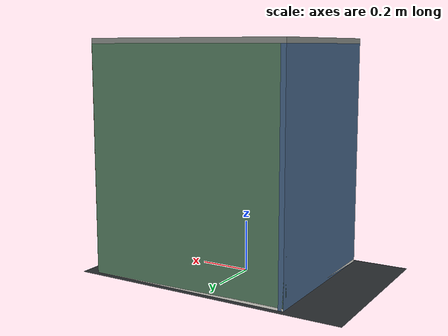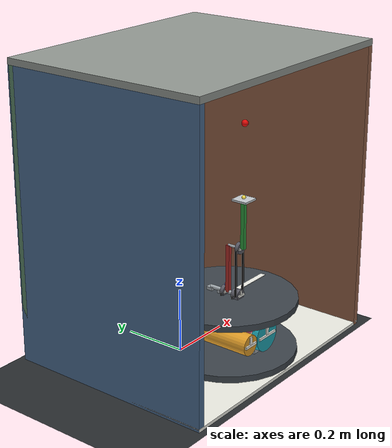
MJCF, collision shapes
<mujoco model="simple_motor_gear">
  <compiler angle="degree" autolimits="true"/>
  <option timestep="0.002" gravity="0 0 0"/>

  <default>
    <geom contype="0" conaffinity="0"/>
  </default>

  <visual>
    <global azimuth="135" elevation="-20"/>
    <headlight ambient="0.22 0.22 0.22" diffuse="0.50 0.50 0.48" specular="0.14 0.14 0.14"/>
  </visual>

  <asset>
    <texture name="grid" type="2d" builtin="checker" width="512" height="512"
             rgb1="0.20 0.22 0.23" rgb2="0.12 0.13 0.14"/>
    <texture name="left_wall_checker" type="2d" file="assets/left_wall_checker.png"/>
    <texture name="right_wall_checker" type="2d" file="assets/right_wall_checker.png"/>
    <texture name="back_wall_checker" type="2d" file="assets/back_wall_checker.png"/>
    <texture name="ceiling_checker" type="2d" file="assets/ceiling_checker.png"/>
    <mesh name="left_wall_surface" file="assets/left_wall_surface.obj" inertia="shell"/>
    <mesh name="right_wall_surface" file="assets/right_wall_surface.obj" inertia="shell"/>
    <mesh name="back_wall_surface" file="assets/back_wall_surface.obj" inertia="shell"/>
    <mesh name="ceiling_surface" file="assets/ceiling_surface.obj" inertia="shell"/>
    <material name="floor" texture="grid" texrepeat="6 4"/>
    <material name="base" rgba="0.94 0.94 0.90 1"/>
    <material name="motor" rgba="0.27 0.45 0.60 1"/>
    <material name="shaft" rgba="0.65 0.68 0.70 1"/>
    <material name="gear" rgba="0.90 0.63 0.16 1"/>
    <material name="gear2" rgba="0.22 0.62 0.42 1"/>
    <material name="gear3" rgba="0.25 0.48 0.80 1"/>
    <material name="gear4" rgba="0.58 0.35 0.78 1"/>
    <material name="gear5" rgba="0.86 0.34 0.50 1"/>
    <material name="gear6" rgba="0.12 0.66 0.72 1"/>
    <material name="spool" rgba="0.88 0.46 0.14 1"/>
    <material name="turntable" rgba="0.24 0.27 0.30 1"/>
    <material name="timing" rgba="0.36 0.36 0.40 1"/>
    <material name="belt" rgba="0.04 0.04 0.04 1"/>
    <material name="arm" rgba="0.70 0.18 0.16 1"/>
    <material name="arm2" rgba="0.18 0.62 0.24 1"/>
    <material name="plate" rgba="0.78 0.80 0.82 1"/>
    <material name="spotlight" rgba="1.00 0.90 0.32 1"/>
    <material name="target_red" rgba="0.90 0.04 0.03 1"/>
    <material name="axis_x" rgba="0.90 0.10 0.10 1"/>
    <material name="axis_y" rgba="0.10 0.75 0.20 1"/>
    <material name="axis_z" rgba="0.12 0.35 0.95 1"/>
    <material name="mark" rgba="0.95 0.95 0.92 1"/>
    <material name="left_wall" rgba="0.30 0.43 0.58 1"/>
    <material name="right_wall" rgba="0.58 0.38 0.28 1"/>
    <material name="back_wall" rgba="0.36 0.53 0.41 1"/>
    <material name="ceiling" rgba="0.58 0.60 0.58 1"/>
    <material name="left_wall_surface" texture="left_wall_checker"/>
    <material name="right_wall_surface" texture="right_wall_checker"/>
    <material name="back_wall_surface" texture="back_wall_checker"/>
    <material name="ceiling_surface" texture="ceiling_checker"/>
  </asset>

  <worldbody>
    <light name="key" pos="0.2 -0.5 0.5" dir="-0.2 0.5 -0.7"
           ambient="0.10 0.10 0.10" diffuse="0.70 0.70 0.66" specular="0.15 0.15 0.15"/>
    <light name="fill" pos="-0.35 -0.35 0.35" dir="0.6 0.5 -0.5"
           diffuse="0.35 0.39 0.43" specular="0.08 0.08 0.08"/>
    <light name="front_soft" pos="0 -0.45 0.16" dir="0 1 -0.1"
           diffuse="0.18 0.18 0.16" specular="0.03 0.03 0.03"/>
    <camera name="view" pos="0.080 -1.20 0.430" xyaxes="1 0 0 0 0 1"/>

    <geom name="floor" type="plane" size="0.55 0.35 0.01" material="floor"/>
    <!-- 0.78 m clear width leaves about one original-base width beside the mechanism. -->
    <geom name="base" type="box" pos="0.080 0 0.005" size="0.410 0.330 0.005" material="base"/>
    <geom name="left_wall" type="box" pos="-0.320 0 0.450" size="0.010 0.330 0.450" material="left_wall"/>
    <geom name="right_wall" type="box" pos="0.480 0 0.450" size="0.010 0.330 0.450" material="right_wall"/>
    <geom name="back_wall" type="box" pos="0.080 0.320 0.450" size="0.410 0.010 0.450" material="back_wall"/>
    <geom name="ceiling" type="box" pos="0.080 0 0.910" size="0.410 0.330 0.010" material="ceiling"/>
    <geom name="left_wall_checker_surface" type="mesh" mesh="left_wall_surface"
          pos="-0.3095 -0.010 0.450" material="left_wall_surface"/>
    <geom name="right_wall_checker_surface" type="mesh" mesh="right_wall_surface"
          pos="0.4695 -0.010 0.450" material="right_wall_surface"/>
    <geom name="back_wall_checker_surface" type="mesh" mesh="back_wall_surface"
          pos="0.080 0.3095 0.450" material="back_wall_surface"/>
    <geom name="ceiling_checker_surface" type="mesh" mesh="ceiling_surface"
          pos="0.080 -0.010 0.8995" material="ceiling_surface"/>

    <!-- Room-fixed target coordinates. This frame's origin is the initial
         Arm 1 pivot; its axes remain parallel to the global room axes. -->
    <body name="target_origin_frame" pos="0.082 -0.106 0.180">
      <geom name="target_axis_x" type="capsule" fromto="0 0 0 0.040 0 0"
            size="0.0015" material="axis_x"/>
      <geom name="target_axis_y" type="capsule" fromto="0 0 0 0 0.040 0"
            size="0.0015" material="axis_y"/>
      <geom name="target_axis_z" type="capsule" fromto="0 0 0 0 0 0.040"
            size="0.0015" material="axis_z"/>
      <site name="TARGET_ORIGIN_0_0_0" pos="0 0 0" size="0.002"
            rgba="1 1 1 1"/>
      <body name="camera_target" pos="0 -0.064 0.550">
        <geom name="camera_target_sphere" type="sphere" size="0.010"
              material="target_red"/>
      </body>
    </body>

    <!-- The 20 mm turntable raises and yaws the complete mechanism above the fixed room base. -->
    <body name="turntable" pos="0 0 0.020">
      <joint name="turntable_yaw" type="hinge" pos="0.082 -0.118 0" axis="0 0 1"/>
      <geom name="turntable_disk" type="cylinder" pos="0.082 -0.118 0" size="0.210 0.010" material="turntable"/>
      <geom name="turntable_mark" type="box" pos="0.1975 -0.118 0.011" size="0.0672 0.008 0.001" material="mark"/>

    <site name="M" pos="-0.070 -0.010 0.125" size="0.001" rgba="1 1 1 0"/>
    <site name="G1" pos="0.070 -0.105 0.125" size="0.001" rgba="1 1 1 0"/>
    <site name="G2" pos="0.170 -0.105 0.125" size="0.001" rgba="1 1 1 0"/>
    <site name="TG1" pos="0.120 -0.106 0.110" size="0.001" rgba="1 1 1 0"/>
    <site name="TG2" pos="0.120 -0.106 0.210" size="0.001" rgba="1 1 1 0"/>
    <site name="G3" pos="0.170 -0.145 0.125" size="0.001" rgba="1 1 1 0"/>
    <site name="G4" pos="0.170 -0.185 0.125" size="0.001" rgba="1 1 1 0"/>
    <site name="G5" pos="0.170 -0.225 0.125" size="0.001" rgba="1 1 1 0"/>
    <site name="G6" pos="0.170 -0.265 0.125" size="0.001" rgba="1 1 1 0"/>
    <site name="TG3" pos="0.120 -0.146 0.110" size="0.001" rgba="1 1 1 0"/>
    <site name="TG4" pos="0.120 -0.146 0.210" size="0.001" rgba="1 1 1 0"/>
    <site name="TG5" pos="0.120 -0.158 0.210" size="0.001" rgba="1 1 1 0"/>
    <site name="TG6" pos="0.120 -0.158 0.360" size="0.001" rgba="1 1 1 0"/>

    <body name="M" pos="0 -0.035 0.080">
      <geom name="motor_case" type="box" pos="0 0.025 0" size="0.050 0.035 0.070" material="motor"/>
      <geom name="shaft" type="cylinder" pos="0 -0.020 0" euler="90 0 0" size="0.008 0.030" material="shaft"/>

      <!-- Duplicate lazy-Susan plate. Its bottom touches the motor-case top,
           and its center/radius track the lower turntable to constrain the
           arm mechanism between the two plates. -->
      <geom name="upper_turntable_disk" type="cylinder"
            pos="0.082 -0.083 0.080" size="0.210 0.010" material="turntable"/>
      <geom name="upper_turntable_mark" type="box"
            pos="0.1975 -0.083 0.091" size="0.0672 0.008 0.001" material="mark"/>

      <body name="G1" pos="0 -0.055 0">
        <joint name="gear_hinge" type="hinge" axis="0 1 0"/>
        <geom name="gear_disk" type="cylinder" pos="0 -0.080 0" euler="90 0 0" size="0.032 0.090" material="gear"/>
        <geom name="face_mark" type="box" pos="0 -0.171 0.0128" size="0.006 0.002 0.0141" material="mark"/>
        <geom name="spoke_mark" type="box" pos="0 -0.172 0" size="0.0256 0.002 0.004" material="mark"/>
      </body>
    </body>

    <geom name="g2_support" type="box" pos="0.082 -0.055 0.045" size="0.010 0.010 0.035" material="shaft"/>
    <geom name="g2_axle" type="cylinder" pos="0.082 -0.0775 0.080" euler="90 0 0" size="0.006 0.0225" material="shaft"/>
    <geom name="tg2_support" type="box" pos="0.082 -0.055 0.130" size="0.010 0.010 0.050" material="shaft"/>
    <geom name="tg2_axle" type="cylinder" pos="0.082 -0.0805 0.180" euler="90 0 0" size="0.006 0.0255" material="shaft"/>
    <geom name="belt_left" type="box" pos="0.0645 -0.106 0.130" size="0.002 0.003 0.050" material="belt"/>
    <geom name="belt_right" type="box" pos="0.0995 -0.106 0.130" size="0.002 0.003 0.050" material="belt"/>
    <geom name="g3_support" type="box" pos="0.082 -0.095 0.045" size="0.010 0.010 0.035" material="shaft"/>
    <geom name="g3_axle" type="cylinder" pos="0.082 -0.1175 0.080" euler="90 0 0" size="0.006 0.0225" material="shaft"/>
    <geom name="g4_support" type="box" pos="0.082 -0.135 0.045" size="0.010 0.010 0.035" material="shaft"/>
    <geom name="g4_axle" type="cylinder" pos="0.082 -0.1575 0.080" euler="90 0 0" size="0.006 0.0225" material="shaft"/>
    <geom name="g5_support" type="box" pos="0.082 -0.175 0.045" size="0.010 0.010 0.035" material="shaft"/>
    <geom name="g5_axle" type="cylinder" pos="0.082 -0.1975 0.080" euler="90 0 0" size="0.006 0.0225" material="shaft"/>
    <geom name="g6_support" type="box" pos="0.082 -0.215 0.045" size="0.010 0.010 0.035" material="shaft"/>
    <geom name="g6_axle" type="cylinder" pos="0.082 -0.2375 0.080" euler="90 0 0" size="0.006 0.0225" material="shaft"/>
    <geom name="tg4_support" type="box" pos="0.082 -0.095 0.130" size="0.010 0.010 0.050" material="shaft"/>
    <geom name="tg4_axle" type="cylinder" pos="0.082 -0.1205 0.180" euler="90 0 0" size="0.006 0.0255" material="shaft"/>
    <geom name="belt2_left" type="box" pos="0.0645 -0.146 0.130" size="0.002 0.003 0.050" material="belt"/>
    <geom name="belt2_right" type="box" pos="0.0995 -0.146 0.130" size="0.002 0.003 0.050" material="belt"/>
    <body name="G2" pos="0.082 -0.090 0.080">
      <joint name="g2_hinge" type="hinge" axis="0 1 0"/>
      <geom name="g2_disk" type="cylinder" euler="90 0 0" size="0.050 0.010" material="gear2"/>
      <geom name="g2_face_mark" type="box" pos="0 -0.011 0.020" size="0.006 0.002 0.022" material="mark"/>
      <geom name="g2_spoke_mark" type="box" pos="0 -0.012 0" size="0.040 0.002 0.004" material="mark"/>
      <geom name="tg1_disk" type="cylinder" pos="0 -0.016 0" euler="90 0 0" size="0.0175 0.006" material="timing"/>
      <geom name="tg1_face_mark" type="box" pos="0 -0.022 0.007" size="0.004 0.0015 0.0077" material="mark"/>
      <geom name="tg1_spoke_mark" type="box" pos="0 -0.023 0" size="0.014 0.0015 0.003" material="mark"/>
    </body>

    <body name="TG2" pos="0.082 -0.106 0.180">
      <joint name="tg2_hinge" type="hinge" axis="0 1 0"/>
      <geom name="tg2_disk" type="cylinder" euler="90 0 0" size="0.0175 0.006" material="timing"/>
      <geom name="tg2_face_mark" type="box" pos="0 -0.007 0.007" size="0.004 0.0015 0.0077" material="mark"/>
      <geom name="tg2_spoke_mark" type="box" pos="0 -0.008 0" size="0.014 0.0015 0.003" material="mark"/>
      <geom name="arm1" type="box" pos="0 -0.012 0.075" size="0.006 0.006 0.075" material="arm"/>
      <geom name="belt3_left" type="box" pos="-0.0175 -0.052 0.075" size="0.002 0.003 0.075" material="belt"/>
      <geom name="belt3_right" type="box" pos="0.0175 -0.052 0.075" size="0.002 0.003 0.075" material="belt"/>
      <geom name="arm1_end_axle" type="cylinder" pos="0 -0.032 0.150" euler="90 0 0" size="0.004 0.020" material="shaft"/>
      <body name="TG6" pos="0 -0.052 0.150">
        <joint name="tg6_hinge" type="hinge" axis="0 1 0"/>
        <geom name="tg6_disk" type="cylinder" euler="90 0 0" size="0.0175 0.006" material="timing"/>
        <geom name="tg6_face_mark" type="box" pos="0 -0.007 0.007" size="0.004 0.0015 0.0077" material="mark"/>
        <geom name="tg6_spoke_mark" type="box" pos="0 -0.008 0" size="0.014 0.0015 0.003" material="mark"/>
        <geom name="arm2" type="box" pos="0 -0.012 0.075" size="0.006 0.006 0.075" material="arm2"/>
        <body name="tilt_plate_body" pos="0 -0.012 0.150">
          <joint name="plate_x_tilt" type="hinge" axis="1 0 0" range="-45 45"/>
          <joint name="plate_y_tilt" type="hinge" axis="0 1 0" range="-45 45"/>
          <geom name="tilt_plate" type="box" pos="0 0 0.003" size="0.025 0.025 0.003" material="plate"/>
          <geom name="plate_spot_lens" type="sphere" pos="0 0 0.010" size="0.006" material="spotlight"/>
          <camera name="spotlight_camera" pos="0 0 0.018" xyaxes="1 0 0 0 -1 0" fovy="50"/>
          <light name="plate_spotlight" pos="0 0 0.014" dir="0 0 1" diffuse="0.35 0.31 0.16"
                 specular="0.08 0.06 0.025" cutoff="25" attenuation="0.4 0.1 0.02"/>
        </body>
      </body>
    </body>

    <body name="G3" pos="0.082 -0.130 0.080">
      <joint name="g3_hinge" type="hinge" axis="0 1 0"/>
      <geom name="g3_disk" type="cylinder" euler="90 0 0" size="0.050 0.010" material="gear3"/>
      <geom name="g3_face_mark" type="box" pos="0 -0.011 0.020" size="0.006 0.002 0.022" material="mark"/>
      <geom name="g3_spoke_mark" type="box" pos="0 -0.012 0" size="0.040 0.002 0.004" material="mark"/>
      <geom name="tg3_disk" type="cylinder" pos="0 -0.016 0" euler="90 0 0" size="0.0175 0.006" material="timing"/>
      <geom name="tg3_face_mark" type="box" pos="0 -0.022 0.007" size="0.004 0.0015 0.0077" material="mark"/>
      <geom name="tg3_spoke_mark" type="box" pos="0 -0.023 0" size="0.014 0.0015 0.003" material="mark"/>
    </body>

    <body name="TG4" pos="0.082 -0.146 0.180">
      <joint name="tg4_hinge" type="hinge" axis="0 1 0"/>
      <geom name="tg4_disk" type="cylinder" euler="90 0 0" size="0.0175 0.006" material="timing"/>
      <geom name="tg4_face_mark" type="box" pos="0 -0.007 0.007" size="0.004 0.0015 0.0077" material="mark"/>
      <geom name="tg4_spoke_mark" type="box" pos="0 -0.008 0" size="0.014 0.0015 0.003" material="mark"/>
      <geom name="tg5_disk" type="cylinder" pos="0 -0.012 0" euler="90 0 0" size="0.0175 0.006" material="timing"/>
      <geom name="tg5_face_mark" type="box" pos="0 -0.019 0.007" size="0.004 0.0015 0.0077" material="mark"/>
      <geom name="tg5_spoke_mark" type="box" pos="0 -0.020 0" size="0.014 0.0015 0.003" material="mark"/>
    </body>

    <body name="G4" pos="0.082 -0.170 0.080">
      <joint name="g4_hinge" type="hinge" axis="0 1 0"/>
      <geom name="g4_disk" type="cylinder" euler="90 0 0" size="0.050 0.010" material="gear4"/>
      <geom name="g4_face_mark" type="box" pos="0 -0.011 0.020" size="0.006 0.002 0.022" material="mark"/>
      <geom name="g4_spoke_mark" type="box" pos="0 -0.012 0" size="0.040 0.002 0.004" material="mark"/>
      <geom name="g4_spool" type="cylinder" pos="0 -0.017 0" euler="90 0 0" size="0.005 0.006" material="spool"/>
      <geom name="g4_spool_face_mark" type="box" pos="0 -0.024 0.002" size="0.0015 0.001 0.0022" material="mark"/>
      <geom name="g4_spool_spoke_mark" type="box" pos="0 -0.025 0" size="0.004 0.001 0.001" material="mark"/>
    </body>

    <body name="G5" pos="0.082 -0.210 0.080">
      <joint name="g5_hinge" type="hinge" axis="0 1 0"/>
      <geom name="g5_disk" type="cylinder" euler="90 0 0" size="0.050 0.010" material="gear5"/>
      <geom name="g5_face_mark" type="box" pos="0 -0.011 0.020" size="0.006 0.002 0.022" material="mark"/>
      <geom name="g5_spoke_mark" type="box" pos="0 -0.012 0" size="0.040 0.002 0.004" material="mark"/>
      <geom name="g5_spool" type="cylinder" pos="0 -0.017 0" euler="90 0 0" size="0.005 0.006" material="spool"/>
      <geom name="g5_spool_face_mark" type="box" pos="0 -0.024 0.002" size="0.0015 0.001 0.0022" material="mark"/>
      <geom name="g5_spool_spoke_mark" type="box" pos="0 -0.025 0" size="0.004 0.001 0.001" material="mark"/>
    </body>

    <body name="G6" pos="0.082 -0.250 0.080">
      <joint name="g6_hinge" type="hinge" axis="0 1 0"/>
      <geom name="g6_disk" type="cylinder" euler="90 0 0" size="0.050 0.010" material="gear6"/>
      <geom name="g6_face_mark" type="box" pos="0 -0.011 0.020" size="0.006 0.002 0.022" material="mark"/>
      <geom name="g6_spoke_mark" type="box" pos="0 -0.012 0" size="0.040 0.002 0.004" material="mark"/>
    </body>
    </body>
  </worldbody>
</mujoco>
